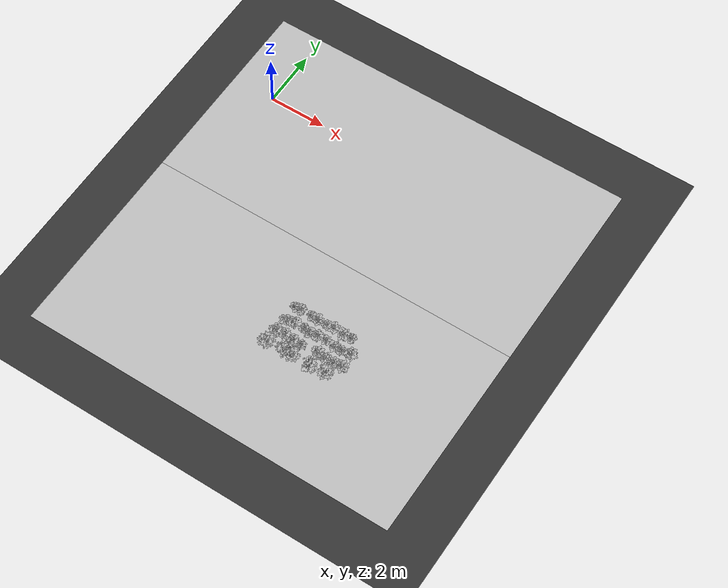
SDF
<sdf version="1.7">
 <world name="default">
  <model name="ground_plane">
   <static>1</static>
   <link name="link">
    <collision name="collision">
     <geometry><plane><normal>0 0 1</normal><size>100 100</size></plane></geometry>
     <surface>
      <contact><collide_bitmask>65535</collide_bitmask></contact>
      <friction><ode><mu>100</mu><mu2>50</mu2></ode></friction>
     </surface>
    </collision>
    <visual name="visual">
     <cast_shadows>0</cast_shadows>
     <geometry><plane><normal>0 0 1</normal><size>100 100</size></plane></geometry>
     <material>
      <ambient>0.2 0.2 0.2 1.0</ambient>
      <diffuse>0.2 0.2 0.2 1.0</diffuse>
      <specular>0.2 0.2 0.2 1.0</specular>
      <emissive>0.2 0.2 0.2 1.0</emissive>
     </material>
    </visual>
   </link>
  </model>
  <model name="ground">
   <pose>5 -0.5 0.01  3.141592654 0 0</pose>
   <static>true</static>
   <link name="body">
    <visual name="visual">
     <cast_shadows>0</cast_shadows>
     <geometry>
      <mesh><uri>file:///home/ifcosta/final_ws/src/cnn_line/worlds/models/ground.obj</uri></mesh>
     </geometry>
    </visual>
   </link>
  </model>
  <model name="ground_1">
   <pose>5 -7.4 0.01  3.1410592654 0 0</pose>
   <static>true</static>
   <link name="body">
    <visual name="visual">
     <cast_shadows>0</cast_shadows>
     <geometry>
      <mesh><uri>file:///home/ifcosta/final_ws/src/cnn_line/worlds/models/ground.obj</uri></mesh>
     </geometry>
    </visual>
   </link>
  </model>
  <model name="plt_20017">
   <pose>5.1 -7.27 0.0129 0.0 0.0 1.2066</pose>
   <static>true</static>
   <link name="body">
    <visual name="visual">
     <geometry>
      <mesh><uri>file:///home/ifcosta/final_ws/src/cnn_line/worlds/models/plant22.obj</uri></mesh>
     </geometry>
    </visual>
   </link>
  </model>
  <model name="plt_20018">
   <pose>5.41 -7.24 0.0167 0.0 0.0 0.76993</pose>
   <static>true</static>
   <link name="body">
    <visual name="visual">
     <geometry>
      <mesh><uri>file:///home/ifcosta/final_ws/src/cnn_line/worlds/models/plant21.obj</uri></mesh>
     </geometry>
    </visual>
   </link>
  </model>
  <model name="plt_20019">
   <pose>5.73 -7.27 0.012 0.0 0.0 0.46287</pose>
   <static>true</static>
   <link name="body">
    <visual name="visual">
     <geometry>
      <mesh><uri>file:///home/ifcosta/final_ws/src/cnn_line/worlds/models/plant21.obj</uri></mesh>
     </geometry>
    </visual>
   </link>
  </model>
  <model name="plt_20020">
   <pose>6.03 -7.28 0.0152 0.0 0.0 0.29218</pose>
   <static>true</static>
   <link name="body">
    <visual name="visual">
     <geometry>
      <mesh><uri>file:///home/ifcosta/final_ws/src/cnn_line/worlds/models/plant20.obj</uri></mesh>
     </geometry>
    </visual>
   </link>
  </model>
  <model name="plt_20022">
   <pose>6.61 -7.23 0.0153 0.0 0.0 0.67324</pose>
   <static>true</static>
   <link name="body">
    <visual name="visual">
     <geometry>
      <mesh><uri>file:///home/ifcosta/final_ws/src/cnn_line/worlds/models/plant22.obj</uri></mesh>
     </geometry>
    </visual>
   </link>
  </model>
  <model name="plt_20023">
   <pose>6.89 -7.26 0.0155 0.0 0.0 -0.047818</pose>
   <static>true</static>
   <link name="body">
    <visual name="visual">
     <geometry>
      <mesh><uri>file:///home/ifcosta/final_ws/src/cnn_line/worlds/models/plant21.obj</uri></mesh>
     </geometry>
    </visual>
   </link>
  </model>
  <model name="plt_20024">
   <pose>7.18 -7.26 0.0155 0.0 0.0 0.093608</pose>
   <static>true</static>
   <link name="body">
    <visual name="visual">
     <geometry>
      <mesh><uri>file:///home/ifcosta/final_ws/src/cnn_line/worlds/models/plant21.obj</uri></mesh>
     </geometry>
    </visual>
   </link>
  </model>
  <model name="plt_20025">
   <pose>7.49 -7.22 0.0176 0.0 0.0 0.53895</pose>
   <static>true</static>
   <link name="body">
    <visual name="visual">
     <geometry>
      <mesh><uri>file:///home/ifcosta/final_ws/src/cnn_line/worlds/models/plant22.obj</uri></mesh>
     </geometry>
    </visual>
   </link>
  </model>
  <model name="plt_20051">
   <pose>5.14 -6.8 0.0164 0.0 0.0 -1.9181</pose>
   <static>true</static>
   <link name="body">
    <visual name="visual">
     <geometry>
      <mesh><uri>file:///home/ifcosta/final_ws/src/cnn_line/worlds/models/plant21.obj</uri></mesh>
     </geometry>
    </visual>
   </link>
  </model>
  <model name="plt_20052">
   <pose>5.42 -6.74 0.0171 0.0 0.0 -1.4529</pose>
   <static>true</static>
   <link name="body">
    <visual name="visual">
     <geometry>
      <mesh><uri>file:///home/ifcosta/final_ws/src/cnn_line/worlds/models/plant22.obj</uri></mesh>
     </geometry>
    </visual>
   </link>
  </model>
  <model name="plt_20053">
   <pose>5.77 -6.74 0.0141 0.0 0.0 -0.0077025</pose>
   <static>true</static>
   <link name="body">
    <visual name="visual">
     <geometry>
      <mesh><uri>file:///home/ifcosta/final_ws/src/cnn_line/worlds/models/plant20.obj</uri></mesh>
     </geometry>
    </visual>
   </link>
  </model>
  <model name="plt_20054">
   <pose>6.01 -6.78 0.0155 0.0 0.0 -1.5062</pose>
   <static>true</static>
   <link name="body">
    <visual name="visual">
     <geometry>
      <mesh><uri>file:///home/ifcosta/final_ws/src/cnn_line/worlds/models/plant21.obj</uri></mesh>
     </geometry>
    </visual>
   </link>
  </model>
  <model name="plt_20055">
   <pose>6.29 -6.75 0.015 0.0 0.0 1.2402</pose>
   <static>true</static>
   <link name="body">
    <visual name="visual">
     <geometry>
      <mesh><uri>file:///home/ifcosta/final_ws/src/cnn_line/worlds/models/plant21.obj</uri></mesh>
     </geometry>
    </visual>
   </link>
  </model>
  <model name="plt_20056">
   <pose>6.58 -6.71 0.0156 0.0 0.0 -1.3465</pose>
   <static>true</static>
   <link name="body">
    <visual name="visual">
     <geometry>
      <mesh><uri>file:///home/ifcosta/final_ws/src/cnn_line/worlds/models/plant20.obj</uri></mesh>
     </geometry>
    </visual>
   </link>
  </model>
  <model name="plt_20057">
   <pose>6.9 -6.77 0.0161 0.0 0.0 -0.19476</pose>
   <static>true</static>
   <link name="body">
    <visual name="visual">
     <geometry>
      <mesh><uri>file:///home/ifcosta/final_ws/src/cnn_line/worlds/models/plant21.obj</uri></mesh>
     </geometry>
    </visual>
   </link>
  </model>
  <model name="plt_20058">
   <pose>7.17 -6.78 0.016 0.0 0.0 0.21348</pose>
   <static>true</static>
   <link name="body">
    <visual name="visual">
     <geometry>
      <mesh><uri>file:///home/ifcosta/final_ws/src/cnn_line/worlds/models/plant20.obj</uri></mesh>
     </geometry>
    </visual>
   </link>
  </model>
  <model name="plt_20059">
   <pose>7.47 -6.73 0.0152 0.0 0.0 0.97257</pose>
   <static>true</static>
   <link name="body">
    <visual name="visual">
     <geometry>
      <mesh><uri>file:///home/ifcosta/final_ws/src/cnn_line/worlds/models/plant22.obj</uri></mesh>
     </geometry>
    </visual>
   </link>
  </model>
  <model name="plt_20085">
   <pose>5.14 -6.27 0.0163 0.0 0.0 1.4066</pose>
   <static>true</static>
   <link name="body">
    <visual name="visual">
     <geometry>
      <mesh><uri>file:///home/ifcosta/final_ws/src/cnn_line/worlds/models/plant20.obj</uri></mesh>
     </geometry>
    </visual>
   </link>
  </model>
  <model name="plt_20086">
   <pose>5.33 -6.26 0.0139 0.0 0.0 2.1815</pose>
   <static>true</static>
   <link name="body">
    <visual name="visual">
     <geometry>
      <mesh><uri>file:///home/ifcosta/final_ws/src/cnn_line/worlds/models/plant21.obj</uri></mesh>
     </geometry>
    </visual>
   </link>
  </model>
  <model name="plt_20087">
   <pose>5.74 -6.26 0.0161 0.0 0.0 1.0853</pose>
   <static>true</static>
   <link name="body">
    <visual name="visual">
     <geometry>
      <mesh><uri>file:///home/ifcosta/final_ws/src/cnn_line/worlds/models/plant20.obj</uri></mesh>
     </geometry>
    </visual>
   </link>
  </model>
  <model name="plt_20088">
   <pose>5.98 -6.25 0.0138 0.0 0.0 -1.1308</pose>
   <static>true</static>
   <link name="body">
    <visual name="visual">
     <geometry>
      <mesh><uri>file:///home/ifcosta/final_ws/src/cnn_line/worlds/models/plant21.obj</uri></mesh>
     </geometry>
    </visual>
   </link>
  </model>
  <model name="plt_20089">
   <pose>6.28 -6.26 0.012 0.0 0.0 -0.45415</pose>
   <static>true</static>
   <link name="body">
    <visual name="visual">
     <geometry>
      <mesh><uri>file:///home/ifcosta/final_ws/src/cnn_line/worlds/models/plant20.obj</uri></mesh>
     </geometry>
    </visual>
   </link>
  </model>
  <model name="plt_20090">
   <pose>6.55 -6.22 0.0124 0.0 0.0 -0.88031</pose>
   <static>true</static>
   <link name="body">
    <visual name="visual">
     <geometry>
      <mesh><uri>file:///home/ifcosta/final_ws/src/cnn_line/worlds/models/plant21.obj</uri></mesh>
     </geometry>
    </visual>
   </link>
  </model>
  <model name="plt_20091">
   <pose>6.91 -6.27 0.0171 0.0 0.0 0.21214</pose>
   <static>true</static>
   <link name="body">
    <visual name="visual">
     <geometry>
      <mesh><uri>file:///home/ifcosta/final_ws/src/cnn_line/worlds/models/plant22.obj</uri></mesh>
     </geometry>
    </visual>
   </link>
  </model>
  <model name="plt_20092">
   <pose>7.19 -6.25 0.016 0.0 0.0 1.1844</pose>
   <static>true</static>
   <link name="body">
    <visual name="visual">
     <geometry>
      <mesh><uri>file:///home/ifcosta/final_ws/src/cnn_line/worlds/models/plant20.obj</uri></mesh>
     </geometry>
    </visual>
   </link>
  </model>
  <model name="plt_30187">
   <pose>5.07 -7.75 0.0149 0.0 0.0 -1.1753</pose>
   <static>true</static>
   <link name="body">
    <visual name="visual">
     <geometry>
      <mesh><uri>file:///home/ifcosta/final_ws/src/cnn_line/worlds/models/plant32.obj</uri></mesh>
     </geometry>
    </visual>
   </link>
  </model>
  <model name="plt_30189">
   <pose>5.72 -7.73 0.0153 0.0 0.0 -0.12682</pose>
   <static>true</static>
   <link name="body">
    <visual name="visual">
     <geometry>
      <mesh><uri>file:///home/ifcosta/final_ws/src/cnn_line/worlds/models/plant35.obj</uri></mesh>
     </geometry>
    </visual>
   </link>
  </model>
  <model name="plt_30190">
   <pose>6.0 -7.74 0.0149 0.0 0.0 -0.50231</pose>
   <static>true</static>
   <link name="body">
    <visual name="visual">
     <geometry>
      <mesh><uri>file:///home/ifcosta/final_ws/src/cnn_line/worlds/models/plant35.obj</uri></mesh>
     </geometry>
    </visual>
   </link>
  </model>
  <model name="plt_30192">
   <pose>6.66 -7.76 0.0149 0.0 0.0 -0.9554</pose>
   <static>true</static>
   <link name="body">
    <visual name="visual">
     <geometry>
      <mesh><uri>file:///home/ifcosta/final_ws/src/cnn_line/worlds/models/plant36.obj</uri></mesh>
     </geometry>
    </visual>
   </link>
  </model>
  <model name="plt_30194">
   <pose>7.18 -7.69 0.0126 0.0 0.0 -1.5973</pose>
   <static>true</static>
   <link name="body">
    <visual name="visual">
     <geometry>
      <mesh><uri>file:///home/ifcosta/final_ws/src/cnn_line/worlds/models/plant35.obj</uri></mesh>
     </geometry>
    </visual>
   </link>
  </model>
 </world>
</sdf>
